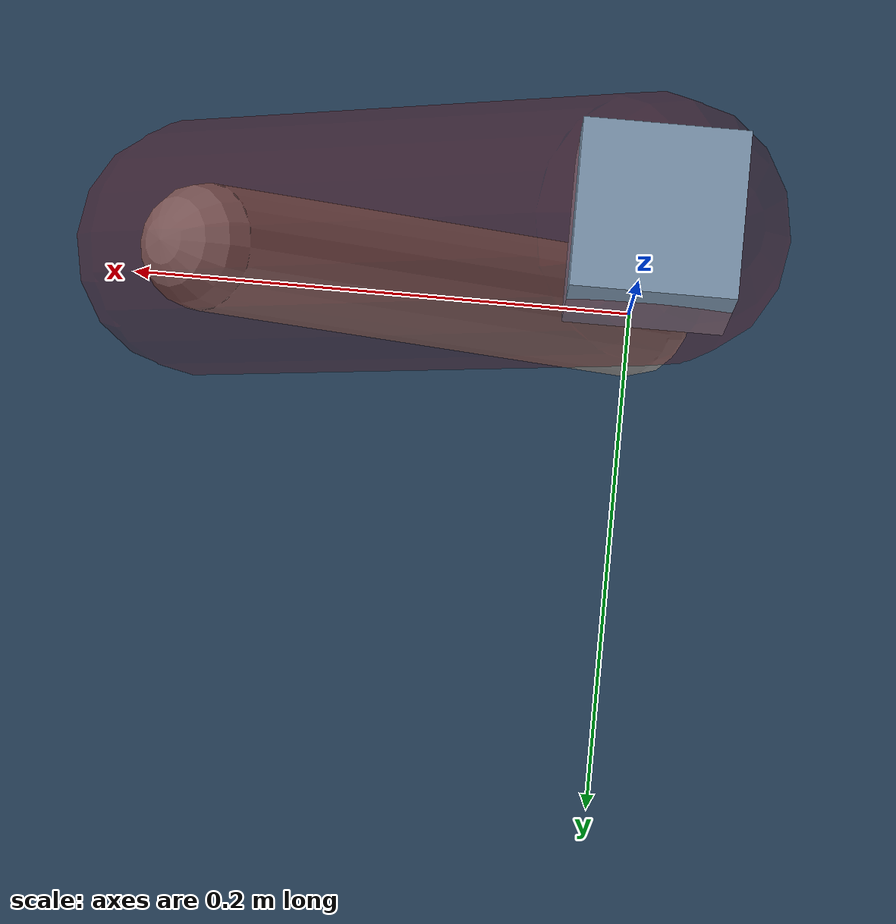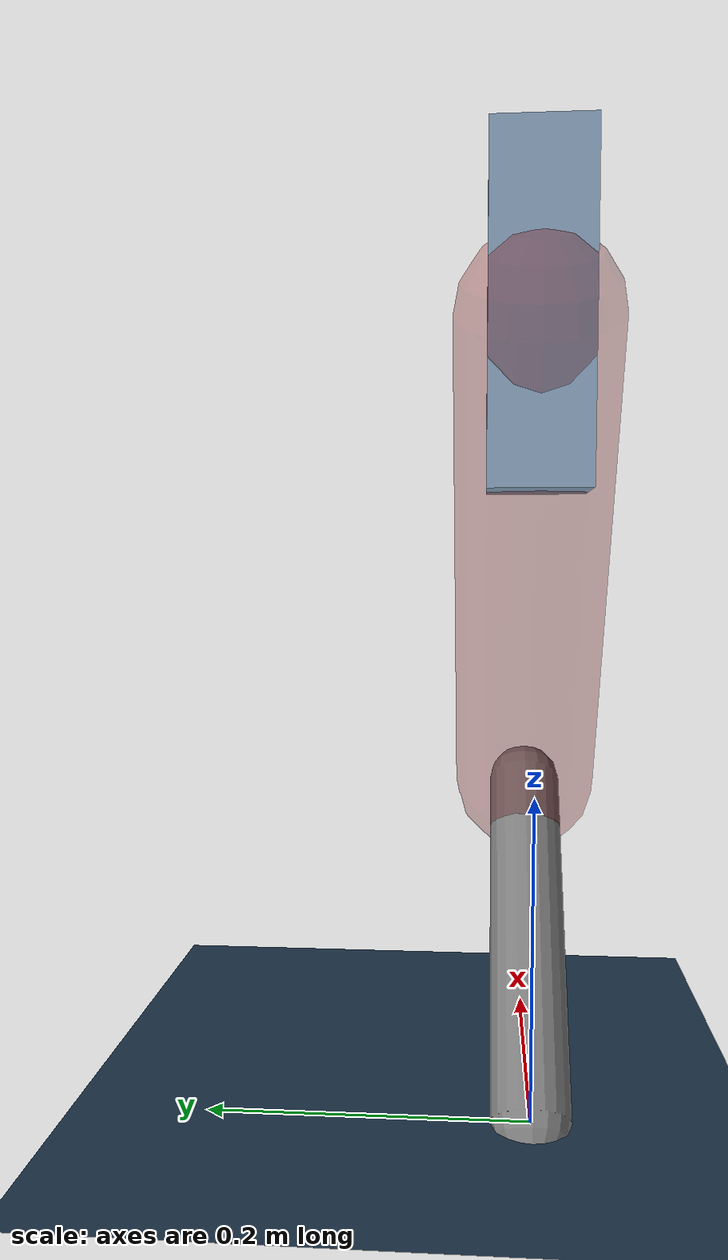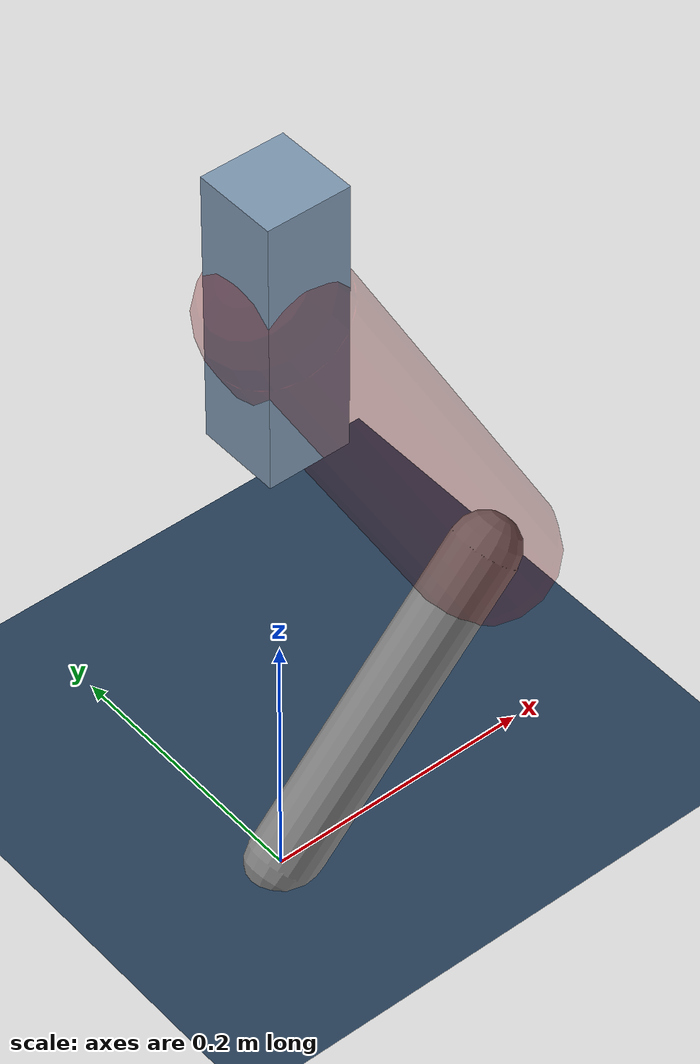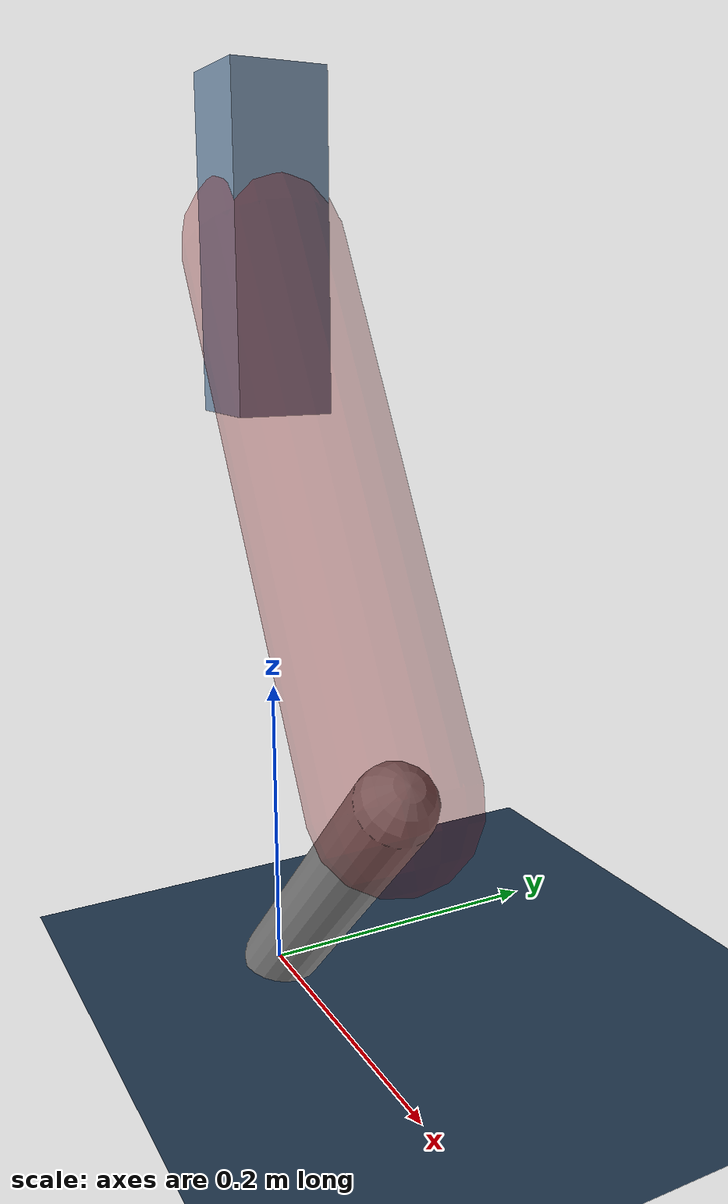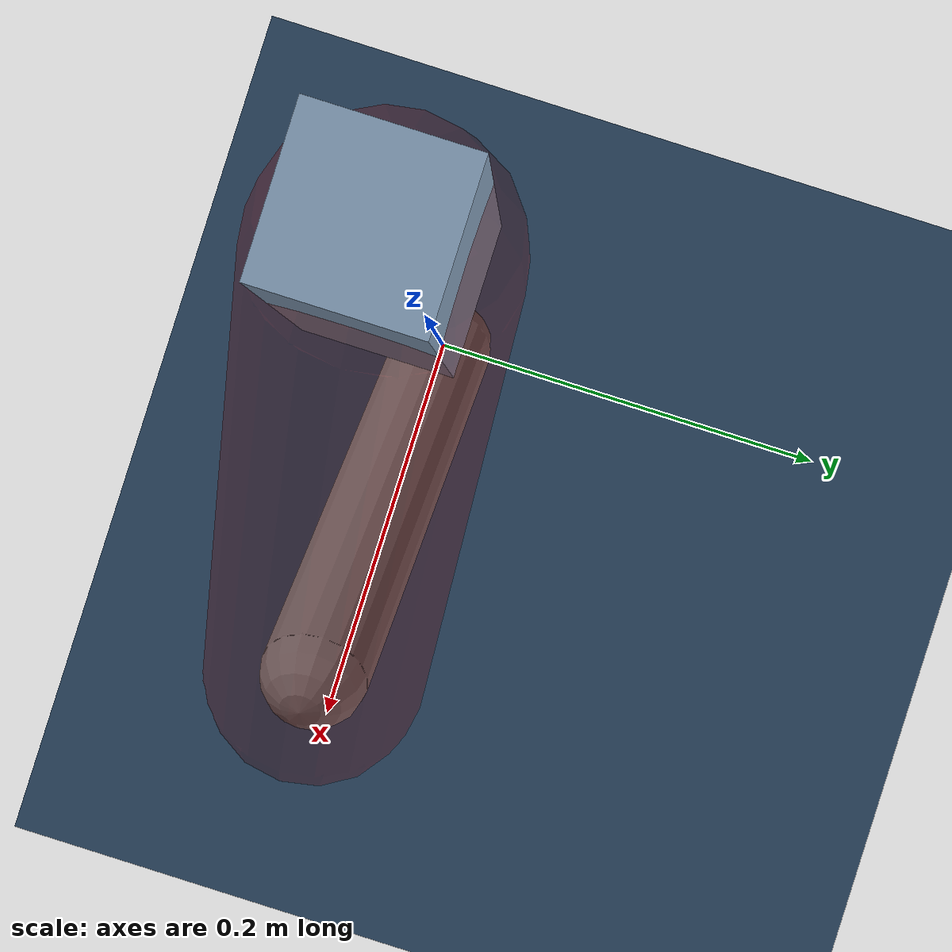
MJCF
<mujoco model="Hopper2D">
	<compiler inertiafromgeom="true" angle="radian" />
	<option timestep="0.001" integrator="implicit" cone="elliptic" solver="Newton" tolerance="1e-10" />

	<default>
		<geom contype="1" conaffinity="1" condim="3" friction="2 0.005 0.0001" solref="0.005 1" />
		<joint limited="true" damping="0.1" />
	</default>

	<asset>
		<texture name="skybox" type="skybox" builtin="gradient" rgb1=".4 .6 .8" rgb2="0 0 0" width="800" height="800" />
		<texture name="grid" type="2d" builtin="checker" rgb1=".1 .2 .3" rgb2=".2 .3 .4" width="300" height="300" mark="edge" markrgb=".2 .3 .4" />
		<material name="ground" texture="grid" texrepeat="1 1" texuniform="true" reflectance="0.1" />
		<material name="leg" rgba="0.5 0.6 0.7 1" />
	</asset>

	<worldbody>

		<geom name="floor" type="plane" size="5 5 0.25" material="ground" />

		<light directional="false" diffuse="0.8 0.8 0.8" specular="0.3 0.3 0.3" pos="0 0 2" dir="0 0 -1" />
		<light mode="targetbodycom" target="base" directional="false" diffuse="0.8 0.8 0.8" specular="0.3 0.3 0.3" pos="0 0 2" dir="0 0 -1" />

		<camera name="fixed" pos="0 -2 1" xyaxes="1 0 0 0 0 1" />
		<camera name="tracking" mode="trackcom" pos="0 -3 1" />

		<body name="root" pos="0 0 0.4810506447828762">
			<joint name="slide_x" type="slide" axis="1 0 0" range="-100 100" />
			<joint name="slide_z" type="slide" axis="0 0 1" range="0 10" />

			<body name="base" pos="0 0 0">
				<geom name="torso" type="box" size="0.03 0.03 0.1" mass="1.9969999999999999" material="leg" />

				<body name="link1" pos="0 0 0" euler="0 1.0598289698683456 0">
					<joint type="hinge" axis="0 -1 0" pos="0 0 0" name="hinge1" limited="true" range="-3.14 3.14" stiffness="0" damping="0.1" />
					<geom name="thigh" type="capsule" fromto="0 0 0 0.34502732913956 0 0" size="0.05" rgba="0.5 0 0 0.3" mass="1.1126765215907681" />

					<body name="link2" pos="0.34502732913956 0 0" euler="0 1.2637890288062728 0">
						<joint type="hinge" axis="0 -1 0" pos="0 0 0" name="hinge2" limited="true" range="-3.14 3.14" stiffness="0" damping="0.1" />
						<geom name="shank" type="capsule" fromto="0 0 0 0.24678301682030027 0 0" size="0.025" mass="0.43990471513827023" />

					</body>
				</body>
			</body>
		</body>
	</worldbody>

	<actuator>
		<motor name="torque1" joint="hinge1" ctrlrange="-36.5604121321652 36.5604121321652" ctrllimited="true" gear="1" />
		<motor name="torque2" joint="hinge2" ctrlrange="-75.94846294619701 75.94846294619701" ctrllimited="true" gear="1" />
	</actuator>
</mujoco>
